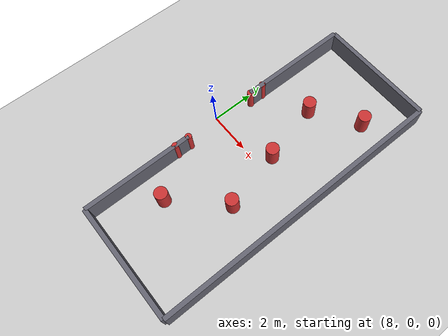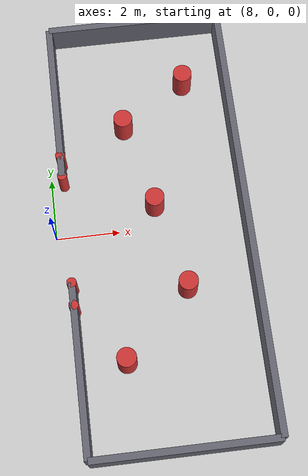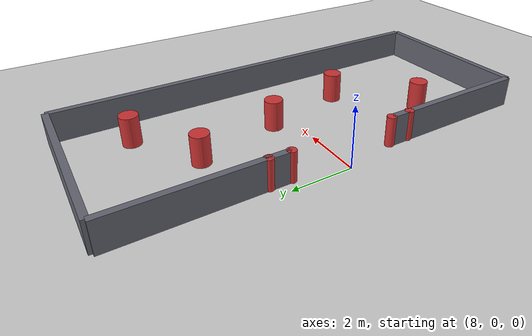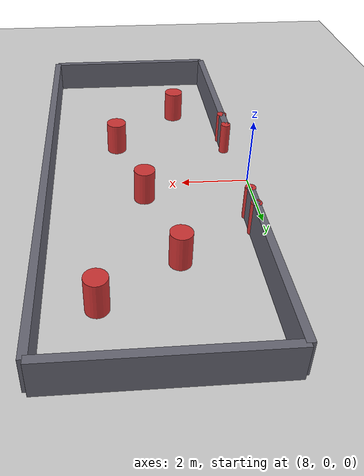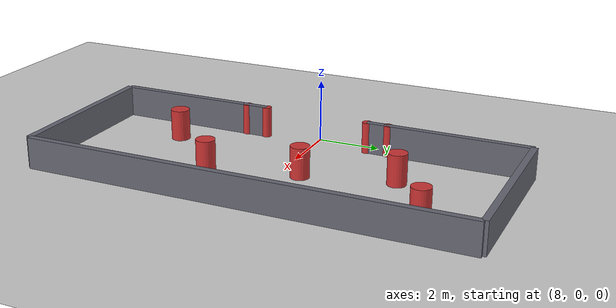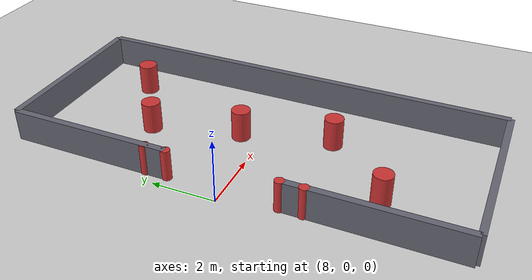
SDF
<?xml version="1.0" ?>
<sdf version="1.9">
  <world name="door">
    <physics name="default_physics" type="dart">
      <max_step_size>0.002</max_step_size>
      <real_time_factor>1.0</real_time_factor>
      <real_time_update_rate>500</real_time_update_rate>
      <dart>
        <solver><solver_type>pgs</solver_type></solver>
        <collision_detector>bullet</collision_detector>
      </dart>
    </physics>
    <plugin filename="gz-sim-sensors-system" name="gz::sim::systems::Sensors"><render_engine>ogre2</render_engine></plugin>
    <plugin filename="gz-sim-forcetorque-system" name="gz::sim::systems::ForceTorque"/>
    <plugin filename="gz-sim-physics-system" name="gz::sim::systems::Physics"/>
    <plugin filename="gz-sim-user-commands-system" name="gz::sim::systems::UserCommands"/>
    <plugin filename="gz-sim-scene-broadcaster-system" name="gz::sim::systems::SceneBroadcaster"/>
    <light type="directional" name="sun">
      <cast_shadows>true</cast_shadows><pose>0 0 10 0 0 0</pose>
      <diffuse>0.8 0.8 0.8 1</diffuse><specular>0.2 0.2 0.2 1</specular>
      <attenuation><range>1000</range><constant>0.9</constant><linear>0.01</linear><quadratic>0.001</quadratic></attenuation>
      <direction>-0.5 0.1 -0.9</direction>
    </light>
    <model name="ground_plane"><static>true</static><link name="link">
      <collision name="collision"><geometry><plane><normal>0 0 1</normal><size>100 100</size></plane></geometry>
        <surface><friction><ode><mu>0.8</mu><mu2>0.8</mu2></ode></friction></surface></collision>
      <visual name="visual"><geometry><plane><normal>0 0 1</normal><size>100 100</size></plane></geometry>
        <material><ambient>0.8 0.8 0.8 1</ambient><diffuse>0.8 0.8 0.8 1</diffuse></material></visual></link></model>
    <model name="obs_cyl_0"><static>true</static>
      <pose>10.5 3.5 0.5 0 0 0</pose>
      <link name="l"><collision name="c"><geometry><cylinder><radius>0.3</radius><length>1.0</length></cylinder></geometry></collision>
      <visual name="v"><geometry><cylinder><radius>0.3</radius><length>1.0</length></cylinder></geometry>
      <material><ambient>0.7 0.2 0.2 1</ambient><diffuse>0.8 0.2 0.2 1</diffuse></material></visual></link></model>
    <model name="obs_cyl_1"><static>true</static>
      <pose>11.9 -2.1 0.5 0 0 0</pose>
      <link name="l"><collision name="c"><geometry><cylinder><radius>0.3</radius><length>1.0</length></cylinder></geometry></collision>
      <visual name="v"><geometry><cylinder><radius>0.3</radius><length>1.0</length></cylinder></geometry>
      <material><ambient>0.7 0.2 0.2 1</ambient><diffuse>0.8 0.2 0.2 1</diffuse></material></visual></link></model>
    <model name="obs_cyl_2"><static>true</static>
      <pose>12.6 4.9 0.5 0 0 0</pose>
      <link name="l"><collision name="c"><geometry><cylinder><radius>0.3</radius><length>1.0</length></cylinder></geometry></collision>
      <visual name="v"><geometry><cylinder><radius>0.3</radius><length>1.0</length></cylinder></geometry>
      <material><ambient>0.7 0.2 0.2 1</ambient><diffuse>0.8 0.2 0.2 1</diffuse></material></visual></link></model>
    <model name="obs_cyl_3"><static>true</static>
      <pose>9.8 -4.2 0.5 0 0 0</pose>
      <link name="l"><collision name="c"><geometry><cylinder><radius>0.3</radius><length>1.0</length></cylinder></geometry></collision>
      <visual name="v"><geometry><cylinder><radius>0.3</radius><length>1.0</length></cylinder></geometry>
      <material><ambient>0.7 0.2 0.2 1</ambient><diffuse>0.8 0.2 0.2 1</diffuse></material></visual></link></model>
    <model name="obs_cyl_4"><static>true</static>
      <pose>11.2 0.7 0.5 0 0 0</pose>
      <link name="l"><collision name="c"><geometry><cylinder><radius>0.3</radius><length>1.0</length></cylinder></geometry></collision>
      <visual name="v"><geometry><cylinder><radius>0.3</radius><length>1.0</length></cylinder></geometry>
      <material><ambient>0.7 0.2 0.2 1</ambient><diffuse>0.8 0.2 0.2 1</diffuse></material></visual></link></model>
    <model name="obs_cyl_5"><static>true</static>
      <pose>8.4 1.75 0.5 0 0 0</pose>
      <link name="l"><collision name="c"><geometry><cylinder><radius>0.15</radius><length>1.0</length></cylinder></geometry></collision>
      <visual name="v"><geometry><cylinder><radius>0.15</radius><length>1.0</length></cylinder></geometry>
      <material><ambient>0.7 0.2 0.2 1</ambient><diffuse>0.8 0.2 0.2 1</diffuse></material></visual></link></model>
    <model name="obs_cyl_6"><static>true</static>
      <pose>8.4 2.45 0.5 0 0 0</pose>
      <link name="l"><collision name="c"><geometry><cylinder><radius>0.15</radius><length>1.0</length></cylinder></geometry></collision>
      <visual name="v"><geometry><cylinder><radius>0.15</radius><length>1.0</length></cylinder></geometry>
      <material><ambient>0.7 0.2 0.2 1</ambient><diffuse>0.8 0.2 0.2 1</diffuse></material></visual></link></model>
    <model name="obs_cyl_7"><static>true</static>
      <pose>8.4 -1.75 0.5 0 0 0</pose>
      <link name="l"><collision name="c"><geometry><cylinder><radius>0.15</radius><length>1.0</length></cylinder></geometry></collision>
      <visual name="v"><geometry><cylinder><radius>0.15</radius><length>1.0</length></cylinder></geometry>
      <material><ambient>0.7 0.2 0.2 1</ambient><diffuse>0.8 0.2 0.2 1</diffuse></material></visual></link></model>
    <model name="obs_cyl_8"><static>true</static>
      <pose>8.4 -2.45 0.5 0 0 0</pose>
      <link name="l"><collision name="c"><geometry><cylinder><radius>0.15</radius><length>1.0</length></cylinder></geometry></collision>
      <visual name="v"><geometry><cylinder><radius>0.15</radius><length>1.0</length></cylinder></geometry>
      <material><ambient>0.7 0.2 0.2 1</ambient><diffuse>0.8 0.2 0.2 1</diffuse></material></visual></link></model>
    <model name="wall_0"><static>true</static>
      <pose>8.4 4.375 0.5 0 0 0</pose>
      <link name="l"><collision name="c"><geometry><box><size>0.21 5.25 1.0</size></box></geometry></collision>
      <visual name="v"><geometry><box><size>0.21 5.25 1.0</size></box></geometry>
      <material><ambient>0.3 0.3 0.35 1</ambient><diffuse>0.4 0.4 0.45 1</diffuse></material></visual></link></model>
    <model name="wall_1"><static>true</static>
      <pose>8.4 -4.375 0.5 0 0 0</pose>
      <link name="l"><collision name="c"><geometry><box><size>0.21 5.25 1.0</size></box></geometry></collision>
      <visual name="v"><geometry><box><size>0.21 5.25 1.0</size></box></geometry>
      <material><ambient>0.3 0.3 0.35 1</ambient><diffuse>0.4 0.4 0.45 1</diffuse></material></visual></link></model>
    <model name="wall_2"><static>true</static>
      <pose>14.0 0.0 0.5 0 0 0</pose>
      <link name="l"><collision name="c"><geometry><box><size>0.21 14.0 1.0</size></box></geometry></collision>
      <visual name="v"><geometry><box><size>0.21 14.0 1.0</size></box></geometry>
      <material><ambient>0.3 0.3 0.35 1</ambient><diffuse>0.4 0.4 0.45 1</diffuse></material></visual></link></model>
    <model name="wall_3"><static>true</static>
      <pose>11.2 7.0 0.5 0 0 0</pose>
      <link name="l"><collision name="c"><geometry><box><size>5.6 0.21 1.0</size></box></geometry></collision>
      <visual name="v"><geometry><box><size>5.6 0.21 1.0</size></box></geometry>
      <material><ambient>0.3 0.3 0.35 1</ambient><diffuse>0.4 0.4 0.45 1</diffuse></material></visual></link></model>
    <model name="wall_4"><static>true</static>
      <pose>11.2 -7.0 0.5 0 0 0</pose>
      <link name="l"><collision name="c"><geometry><box><size>5.6 0.21 1.0</size></box></geometry></collision>
      <visual name="v"><geometry><box><size>5.6 0.21 1.0</size></box></geometry>
      <material><ambient>0.3 0.3 0.35 1</ambient><diffuse>0.4 0.4 0.45 1</diffuse></material></visual></link></model>
    <model name="arena_cam"><static>true</static>
      <pose>7.0 -10 13 0 0.85 1.5708</pose>
      <link name="link">
        <sensor name="arena_cam" type="camera">
          <camera>
            <horizontal_fov>1.1</horizontal_fov>
            <image><width>1280</width><height>720</height></image>
            <clip><near>0.1</near><far>200</far></clip>
          </camera>
          <always_on>1</always_on><update_rate>30</update_rate>
          <topic>arena_cam/image</topic>
        </sensor>
      </link>
    </model>
  </world>
</sdf>
